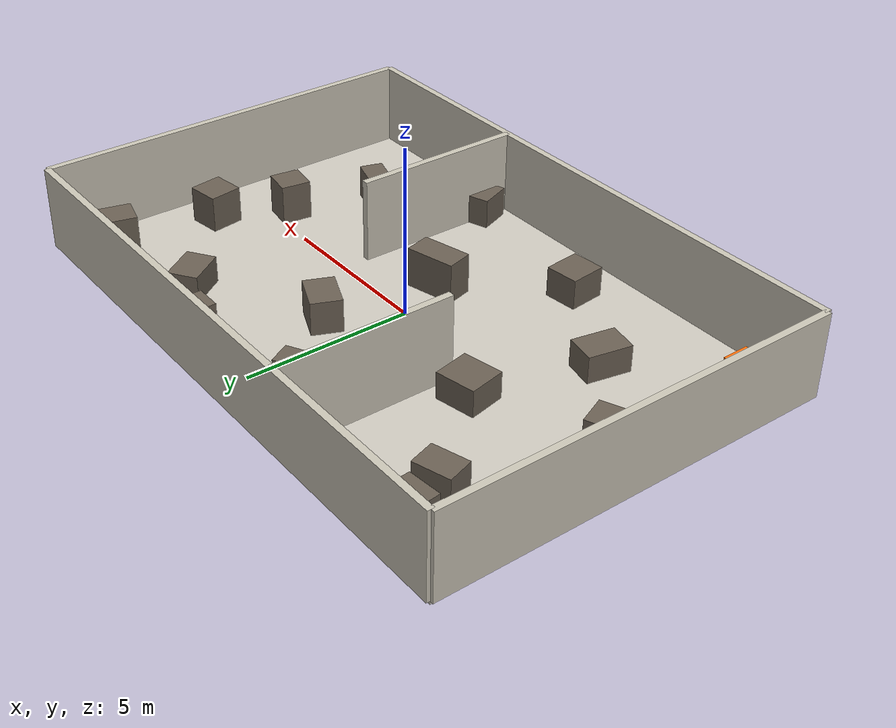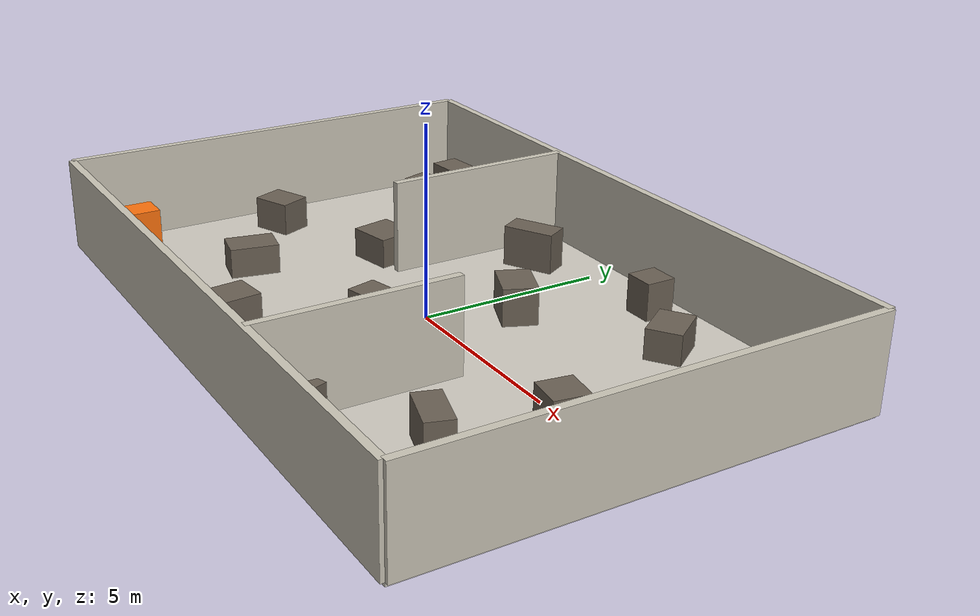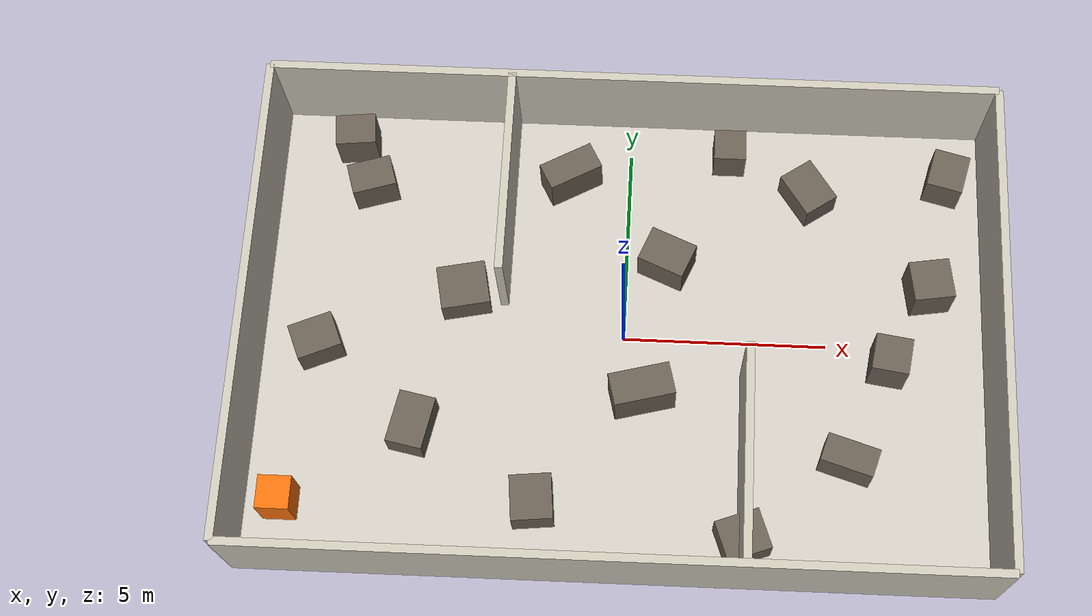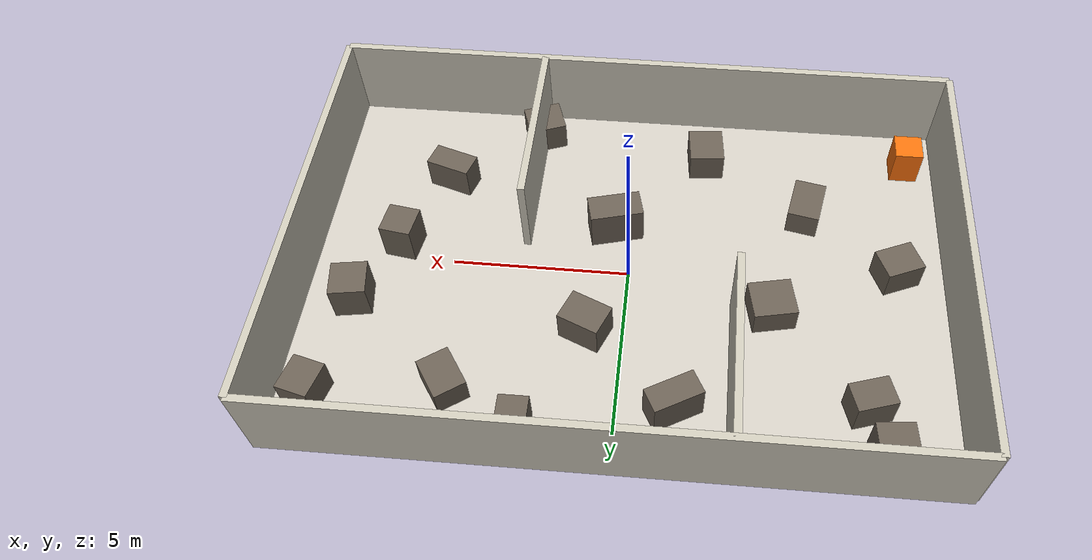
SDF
<sdf version="1.7">
 <world name="ghost_bench">
  <plugin filename="gz-sim-physics-system" name="gz::sim::systems::Physics"/>
  <plugin filename="gz-sim-user-commands-system" name="gz::sim::systems::UserCommands"/>
  <plugin filename="gz-sim-scene-broadcaster-system" name="gz::sim::systems::SceneBroadcaster"/>
  <plugin filename="gz-sim-sensors-system" name="gz::sim::systems::Sensors">
   <render_engine>ogre2</render_engine>
  </plugin>
  <light type="directional" name="sun">
   <pose>0 0 10 0 0 0</pose>
   <diffuse>0.6 0.6 0.6 1</diffuse>
   <specular>0.1 0.1 0.1 1</specular>
   <attenuation>
    <range>500</range>
    <constant>0.9</constant>
    <linear>0.01</linear>
    <quadratic>0.001</quadratic>
   </attenuation>
   <direction>0.2 0.1 -1.0</direction>
  </light>
  <light type="point" name="room_light">
   <pose>0 0 2.3 0 0 0</pose>
   <diffuse>0.6 0.6 0.55 1</diffuse>
   <specular>0.1 0.1 0.1 1</specular>
   <attenuation>
    <range>16</range>
    <constant>0.5</constant>
    <linear>0.1</linear>
    <quadratic>0.01</quadratic>
   </attenuation>
   <cast_shadows>false</cast_shadows>
  </light>
  <model name="floor">
   <static>true</static>
   <pose>0 0 -0.05 0 0 0.0</pose>
   <link name="link">
    <collision name="col"><geometry><box><size>18.0 12.0 0.1</size></box></geometry></collision>
    <visual name="vis">
     <geometry><box><size>18.0 12.0 0.1</size></box></geometry>
     <material><ambient>0.82 0.8 0.76 1</ambient><diffuse>0.82 0.8 0.76 1</diffuse></material>
    </visual>
   </link>
  </model>
  <model name="wall_n">
   <static>true</static>
   <pose>0 6.0 1.25 0 0 0.0</pose>
   <link name="link">
    <collision name="col"><geometry><box><size>18.0 0.2 2.5</size></box></geometry></collision>
    <visual name="vis">
     <geometry><box><size>18.0 0.2 2.5</size></box></geometry>
     <material><ambient>0.8 0.78 0.72 1</ambient><diffuse>0.8 0.78 0.72 1</diffuse></material>
    </visual>
   </link>
  </model>
  <model name="wall_s">
   <static>true</static>
   <pose>0 -6.0 1.25 0 0 0.0</pose>
   <link name="link">
    <collision name="col"><geometry><box><size>18.0 0.2 2.5</size></box></geometry></collision>
    <visual name="vis">
     <geometry><box><size>18.0 0.2 2.5</size></box></geometry>
     <material><ambient>0.8 0.78 0.72 1</ambient><diffuse>0.8 0.78 0.72 1</diffuse></material>
    </visual>
   </link>
  </model>
  <model name="wall_e">
   <static>true</static>
   <pose>9.0 0 1.25 0 0 0.0</pose>
   <link name="link">
    <collision name="col"><geometry><box><size>0.2 12.0 2.5</size></box></geometry></collision>
    <visual name="vis">
     <geometry><box><size>0.2 12.0 2.5</size></box></geometry>
     <material><ambient>0.8 0.78 0.72 1</ambient><diffuse>0.8 0.78 0.72 1</diffuse></material>
    </visual>
   </link>
  </model>
  <model name="wall_w">
   <static>true</static>
   <pose>-9.0 0 1.25 0 0 0.0</pose>
   <link name="link">
    <collision name="col"><geometry><box><size>0.2 12.0 2.5</size></box></geometry></collision>
    <visual name="vis">
     <geometry><box><size>0.2 12.0 2.5</size></box></geometry>
     <material><ambient>0.8 0.78 0.72 1</ambient><diffuse>0.8 0.78 0.72 1</diffuse></material>
    </visual>
   </link>
  </model>
  <model name="div_a">
   <static>true</static>
   <pose>-3.0 3.4 1.25 0 0 0.0</pose>
   <link name="link">
    <collision name="col"><geometry><box><size>0.2 5.2 2.5</size></box></geometry></collision>
    <visual name="vis">
     <geometry><box><size>0.2 5.2 2.5</size></box></geometry>
     <material><ambient>0.8 0.78 0.72 1</ambient><diffuse>0.8 0.78 0.72 1</diffuse></material>
    </visual>
   </link>
  </model>
  <model name="div_b">
   <static>true</static>
   <pose>3.0 -3.4 1.25 0 0 0.0</pose>
   <link name="link">
    <collision name="col"><geometry><box><size>0.2 5.2 2.5</size></box></geometry></collision>
    <visual name="vis">
     <geometry><box><size>0.2 5.2 2.5</size></box></geometry>
     <material><ambient>0.8 0.78 0.72 1</ambient><diffuse>0.8 0.78 0.72 1</diffuse></material>
    </visual>
   </link>
  </model>
  <model name="debris_0">
   <static>true</static>
   <pose>-6.5 3.8 0.5 0 0 0.3</pose>
   <link name="link">
    <collision name="col"><geometry><box><size>1.1 0.8 1.0</size></box></geometry></collision>
    <visual name="vis">
     <geometry><box><size>1.1 0.8 1.0</size></box></geometry>
     <material><ambient>0.42 0.38 0.33 1</ambient><diffuse>0.42 0.38 0.33 1</diffuse></material>
    </visual>
   </link>
  </model>
  <model name="debris_1">
   <static>true</static>
   <pose>-5.0 -2.5 0.4 0 0 -0.2</pose>
   <link name="link">
    <collision name="col"><geometry><box><size>0.9 1.3 0.8</size></box></geometry></collision>
    <visual name="vis">
     <geometry><box><size>0.9 1.3 0.8</size></box></geometry>
     <material><ambient>0.42 0.38 0.33 1</ambient><diffuse>0.42 0.38 0.33 1</diffuse></material>
    </visual>
   </link>
  </model>
  <model name="debris_2">
   <static>true</static>
   <pose>-1.5 4.2 0.55 0 0 0.5</pose>
   <link name="link">
    <collision name="col"><geometry><box><size>1.4 0.7 1.1</size></box></geometry></collision>
    <visual name="vis">
     <geometry><box><size>1.4 0.7 1.1</size></box></geometry>
     <material><ambient>0.42 0.38 0.33 1</ambient><diffuse>0.42 0.38 0.33 1</diffuse></material>
    </visual>
   </link>
  </model>
  <model name="debris_3">
   <static>true</static>
   <pose>-2.0 -4.3 0.45 0 0 0.1</pose>
   <link name="link">
    <collision name="col"><geometry><box><size>1.0 1.1 0.9</size></box></geometry></collision>
    <visual name="vis">
     <geometry><box><size>1.0 1.1 0.9</size></box></geometry>
     <material><ambient>0.42 0.38 0.33 1</ambient><diffuse>0.42 0.38 0.33 1</diffuse></material>
    </visual>
   </link>
  </model>
  <model name="debris_4">
   <static>true</static>
   <pose>1.0 2.0 0.5 0 0 -0.4</pose>
   <link name="link">
    <collision name="col"><geometry><box><size>1.2 0.9 1.0</size></box></geometry></collision>
    <visual name="vis">
     <geometry><box><size>1.2 0.9 1.0</size></box></geometry>
     <material><ambient>0.42 0.38 0.33 1</ambient><diffuse>0.42 0.38 0.33 1</diffuse></material>
    </visual>
   </link>
  </model>
  <model name="debris_5">
   <static>true</static>
   <pose>0.5 -1.5 0.6 0 0 0.25</pose>
   <link name="link">
    <collision name="col"><geometry><box><size>1.5 0.8 1.2</size></box></geometry></collision>
    <visual name="vis">
     <geometry><box><size>1.5 0.8 1.2</size></box></geometry>
     <material><ambient>0.42 0.38 0.33 1</ambient><diffuse>0.42 0.38 0.33 1</diffuse></material>
    </visual>
   </link>
  </model>
  <model name="debris_6">
   <static>true</static>
   <pose>4.5 4.0 0.4 0 0 0.6</pose>
   <link name="link">
    <collision name="col"><geometry><box><size>0.9 1.2 0.8</size></box></geometry></collision>
    <visual name="vis">
     <geometry><box><size>0.9 1.2 0.8</size></box></geometry>
     <material><ambient>0.42 0.38 0.33 1</ambient><diffuse>0.42 0.38 0.33 1</diffuse></material>
    </visual>
   </link>
  </model>
  <model name="debris_7">
   <static>true</static>
   <pose>5.5 -3.0 0.5 0 0 -0.3</pose>
   <link name="link">
    <collision name="col"><geometry><box><size>1.3 0.7 1.0</size></box></geometry></collision>
    <visual name="vis">
     <geometry><box><size>1.3 0.7 1.0</size></box></geometry>
     <material><ambient>0.42 0.38 0.33 1</ambient><diffuse>0.42 0.38 0.33 1</diffuse></material>
    </visual>
   </link>
  </model>
  <model name="debris_8">
   <static>true</static>
   <pose>7.5 1.5 0.55 0 0 0.15</pose>
   <link name="link">
    <collision name="col"><geometry><box><size>1.0 1.0 1.1</size></box></geometry></collision>
    <visual name="vis">
     <geometry><box><size>1.0 1.0 1.1</size></box></geometry>
     <material><ambient>0.42 0.38 0.33 1</ambient><diffuse>0.42 0.38 0.33 1</diffuse></material>
    </visual>
   </link>
  </model>
  <model name="debris_9">
   <static>true</static>
   <pose>-7.5 -0.5 0.45 0 0 0.4</pose>
   <link name="link">
    <collision name="col"><geometry><box><size>1.1 0.9 0.9</size></box></geometry></collision>
    <visual name="vis">
     <geometry><box><size>1.1 0.9 0.9</size></box></geometry>
     <material><ambient>0.42 0.38 0.33 1</ambient><diffuse>0.42 0.38 0.33 1</diffuse></material>
    </visual>
   </link>
  </model>
  <model name="debris_10">
   <static>true</static>
   <pose>2.5 5.0 0.5 0 0 0.0</pose>
   <link name="link">
    <collision name="col"><geometry><box><size>0.8 0.8 1.0</size></box></geometry></collision>
    <visual name="vis">
     <geometry><box><size>0.8 0.8 1.0</size></box></geometry>
     <material><ambient>0.42 0.38 0.33 1</ambient><diffuse>0.42 0.38 0.33 1</diffuse></material>
    </visual>
   </link>
  </model>
  <model name="debris_11">
   <static>true</static>
   <pose>-4.0 1.0 0.4 0 0 0.2</pose>
   <link name="link">
    <collision name="col"><geometry><box><size>1.2 1.1 0.8</size></box></geometry></collision>
    <visual name="vis">
     <geometry><box><size>1.2 1.1 0.8</size></box></geometry>
     <material><ambient>0.42 0.38 0.33 1</ambient><diffuse>0.42 0.38 0.33 1</diffuse></material>
    </visual>
   </link>
  </model>
  <model name="debris_12">
   <static>true</static>
   <pose>6.5 -0.5 0.6 0 0 -0.15</pose>
   <link name="link">
    <collision name="col"><geometry><box><size>0.9 0.9 1.2</size></box></geometry></collision>
    <visual name="vis">
     <geometry><box><size>0.9 0.9 1.2</size></box></geometry>
     <material><ambient>0.42 0.38 0.33 1</ambient><diffuse>0.42 0.38 0.33 1</diffuse></material>
    </visual>
   </link>
  </model>
  <model name="debris_13">
   <static>true</static>
   <pose>3.0 -5.0 0.45 0 0 0.35</pose>
   <link name="link">
    <collision name="col"><geometry><box><size>1.1 1.0 0.9</size></box></geometry></collision>
    <visual name="vis">
     <geometry><box><size>1.1 1.0 0.9</size></box></geometry>
     <material><ambient>0.42 0.38 0.33 1</ambient><diffuse>0.42 0.38 0.33 1</diffuse></material>
    </visual>
   </link>
  </model>
  <model name="debris_14">
   <static>true</static>
   <pose>-7.0 5.0 0.55 0 0 0.1</pose>
   <link name="link">
    <collision name="col"><geometry><box><size>1.0 0.8 1.1</size></box></geometry></collision>
    <visual name="vis">
     <geometry><box><size>1.0 0.8 1.1</size></box></geometry>
     <material><ambient>0.42 0.38 0.33 1</ambient><diffuse>0.42 0.38 0.33 1</diffuse></material>
    </visual>
   </link>
  </model>
  <model name="debris_15">
   <static>true</static>
   <pose>8.0 4.5 0.5 0 0 -0.25</pose>
   <link name="link">
    <collision name="col"><geometry><box><size>0.9 1.0 1.0</size></box></geometry></collision>
    <visual name="vis">
     <geometry><box><size>0.9 1.0 1.0</size></box></geometry>
     <material><ambient>0.42 0.38 0.33 1</ambient><diffuse>0.42 0.38 0.33 1</diffuse></material>
    </visual>
   </link>
  </model>
  <model name="fire_1">
   <static>true</static>
   <pose>-8.0 -4.5 0.6 0 0 0</pose>
   <link name="link">
    <visual name="vis">
     <geometry><box><size>0.8 0.8 1.1</size></box></geometry>
     <material>
      <ambient>1.0 0.45 0.05 1</ambient>
      <diffuse>1.0 0.45 0.05 1</diffuse>
      <emissive>1.0 0.5 0.1 1</emissive>
     </material>
     <plugin filename="gz-sim-thermal-system" name="gz::sim::systems::Thermal">
      <temperature>600.0</temperature>
     </plugin>
    </visual>
   </link>
  </model>
 </world>
</sdf>
